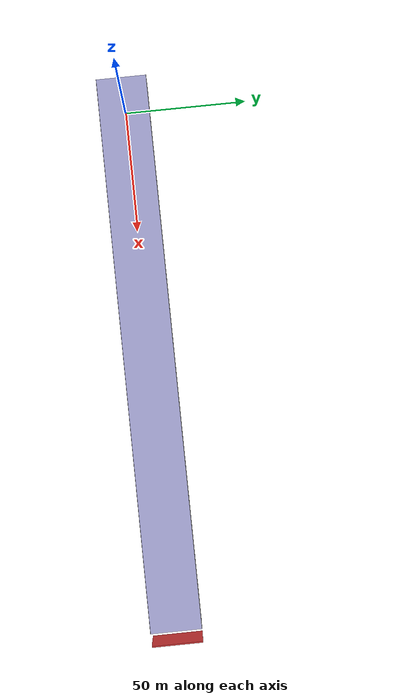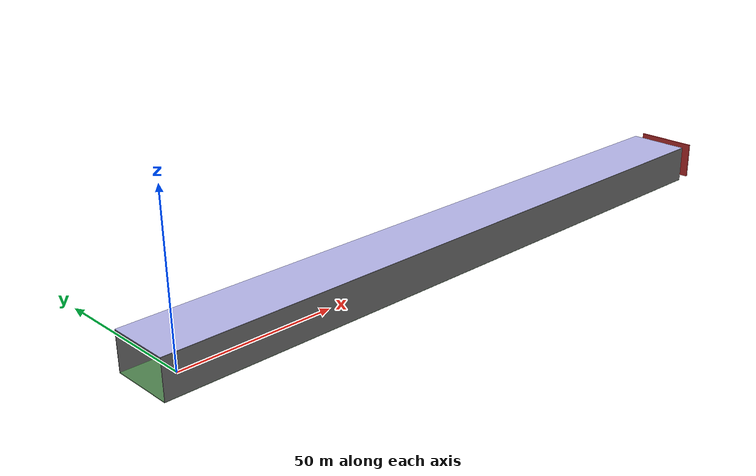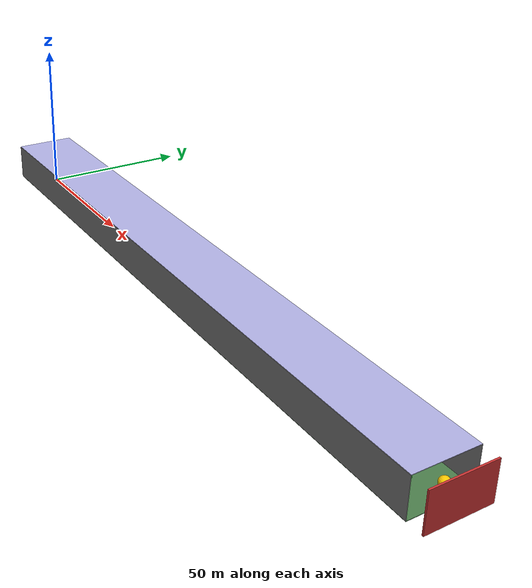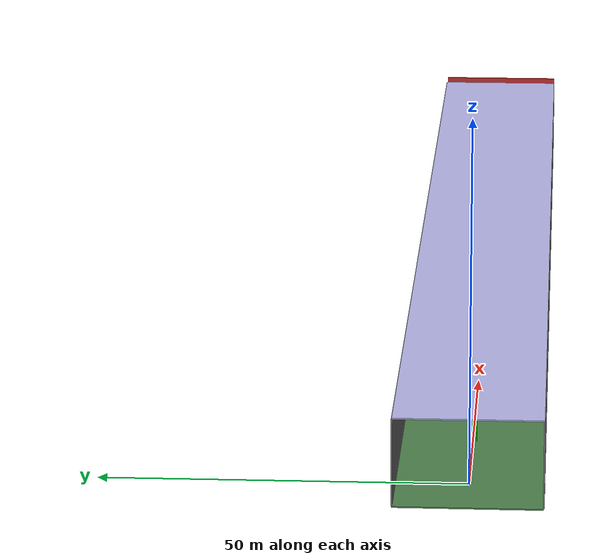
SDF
<?xml version="1.0" ?>
<sdf version="1.6">
  <world name="flappy">
    <physics name="1ms" type="ignored">
      <max_step_size>0.001</max_step_size>
      <real_time_factor>3.0</real_time_factor>
    </physics>

    <plugin filename="gz-sim-physics-system" name="gz::sim::systems::Physics"></plugin>
    <plugin filename="gz-sim-user-commands-system" name="gz::sim::systems::UserCommands"></plugin>
    <plugin filename="gz-sim-scene-broadcaster-system" name="gz::sim::systems::SceneBroadcaster"></plugin>
    <plugin filename="gz-sim-sensors-system" name="gz::sim::systems::Sensors">
      <render_engine>ogre</render_engine>
    </plugin>
    <plugin filename="gz-sim-imu-system" name="gz::sim::systems::Imu"></plugin>
    <plugin filename="gz-sim-contact-system" name="gz::sim::systems::Contact">
    </plugin>

    <light type="directional" name="sun">
      <cast_shadows>true</cast_shadows>
      <pose>0 0 30 0 0 0</pose>
      <diffuse>0.8 0.8 0.8 1</diffuse>
      <specular>0.2 0.2 0.2 1</specular>
      <attenuation>
        <range>1000</range>
        <constant>0.9</constant>
        <linear>0.01</linear>
        <quadratic>0.001</quadratic>
      </attenuation>
      <direction>-0.5 0.1 -0.9</direction>
    </light>

    <include>
      <uri>model://quadrotor</uri>
      <name>quadrotor</name>
      <pose>0 0 6 0 0 0</pose>
    </include>

    <!-- Ground Plane -->
    <model name="ground_plane">
      <static>true</static>
      <pose>100 0 -0.1 0 0 0</pose>
      <link name="link">
        <collision name="collision">
          <geometry>
            <box>
              <size>220 20 0.2</size>
            </box>
          </geometry>
        </collision>
        <visual name="visual">
          <geometry>
            <box>
              <size>220 20 0.2</size>
            </box>
          </geometry>
          <material>
            <ambient>0.3 0.5 0.3 1</ambient>
            <diffuse>0.3 0.5 0.3 1</diffuse>
          </material>
        </visual>
      </link>
    </model>

    <!-- Ceiling -->
    <model name="ceiling">
      <static>true</static>
      <pose>100 0 12 0 0 0</pose>
      <link name="link">
        <collision name="collision">
          <geometry>
            <box>
              <size>220 20 0.2</size>
            </box>
          </geometry>
        </collision>
        <visual name="visual">
          <geometry>
            <box>
              <size>220 20 0.2</size>
            </box>
          </geometry>
          <material>
            <ambient>0.7 0.7 0.9 1</ambient>
            <diffuse>0.7 0.7 0.9 1</diffuse>
          </material>
        </visual>
      </link>
    </model>

    <!-- Left Wall -->
    <model name="wall_left">
      <static>true</static>
      <pose>100 10 6 0 0 0</pose>
      <link name="link">
        <collision name="collision">
          <geometry>
            <box>
              <size>220 0.2 12</size>
            </box>
          </geometry>
        </collision>
        <visual name="visual">
          <geometry>
            <box>
              <size>220 0.2 12</size>
            </box>
          </geometry>
          <material>
            <ambient>0.5 0.5 0.5 1</ambient>
            <diffuse>0.5 0.5 0.5 1</diffuse>
          </material>
        </visual>
      </link>
    </model>

    <!-- Right Wall -->
    <model name="wall_right">
      <static>true</static>
      <pose>100 -10 6 0 0 0</pose>
      <link name="link">
        <collision name="collision">
          <geometry>
            <box>
              <size>220 0.2 12</size>
            </box>
          </geometry>
        </collision>
        <visual name="visual">
          <geometry>
            <box>
              <size>220 0.2 12</size>
            </box>
          </geometry>
          <material>
            <ambient>0.5 0.5 0.5 1</ambient>
            <diffuse>0.5 0.5 0.5 1</diffuse>
          </material>
        </visual>
      </link>
    </model>

    <!-- Flappy Bird Obstacles (Pipes) - 10 pipes total -->

    <!-- Pipe 01: Gap at height 4-7m -->
    <model name="pipe_01">
      <pose>20 0 0 0 0 0</pose>
      <static>true</static>
      <link name="link">
        <!-- Bottom pillar -->
        <collision name="col_bottom">
          <pose>0 0 2.0 0 0 0</pose>
          <geometry>
            <cylinder>
              <radius>0.5</radius>
              <length>4.0</length>
            </cylinder>
          </geometry>
        </collision>
        <visual name="vis_bottom">
          <pose>0 0 2.0 0 0 0</pose>
          <geometry>
            <cylinder>
              <radius>0.5</radius>
              <length>4.0</length>
            </cylinder>
          </geometry>
          <material>
            <ambient>0 0.8 0 1</ambient>
            <diffuse>0 0.8 0 1</diffuse>
          </material>
        </visual>
        <!-- Top pillar -->
        <collision name="col_top">
          <pose>0 0 9.5 0 0 0</pose>
          <geometry>
            <cylinder>
              <radius>0.5</radius>
              <length>5.0</length>
            </cylinder>
          </geometry>
        </collision>
        <visual name="vis_top">
          <pose>0 0 9.5 0 0 0</pose>
          <geometry>
            <cylinder>
              <radius>0.5</radius>
              <length>5.0</length>
            </cylinder>
          </geometry>
          <material>
            <ambient>0 0.8 0 1</ambient>
            <diffuse>0 0.8 0 1</diffuse>
          </material>
        </visual>
      </link>
    </model>

    <!-- Pipe 02: Gap at height 6-9m -->
    <model name="pipe_02">
      <pose>40 0 0 0 0 0</pose>
      <static>true</static>
      <link name="link">
        <collision name="col_bottom">
          <pose>0 0 3.0 0 0 0</pose>
          <geometry>
            <cylinder>
              <radius>0.5</radius>
              <length>6.0</length>
            </cylinder>
          </geometry>
        </collision>
        <visual name="vis_bottom">
          <pose>0 0 3.0 0 0 0</pose>
          <geometry>
            <cylinder>
              <radius>0.5</radius>
              <length>6.0</length>
            </cylinder>
          </geometry>
          <material>
            <ambient>0 0.8 0 1</ambient>
            <diffuse>0 0.8 0 1</diffuse>
          </material>
        </visual>
        <collision name="col_top">
          <pose>0 0 10.5 0 0 0</pose>
          <geometry>
            <cylinder>
              <radius>0.5</radius>
              <length>3.0</length>
            </cylinder>
          </geometry>
        </collision>
        <visual name="vis_top">
          <pose>0 0 10.5 0 0 0</pose>
          <geometry>
            <cylinder>
              <radius>0.5</radius>
              <length>3.0</length>
            </cylinder>
          </geometry>
          <material>
            <ambient>0 0.8 0 1</ambient>
            <diffuse>0 0.8 0 1</diffuse>
          </material>
        </visual>
      </link>
    </model>

    <!-- Pipe 03: Gap at height 3-6m -->
    <model name="pipe_03">
      <pose>60 0 0 0 0 0</pose>
      <static>true</static>
      <link name="link">
        <collision name="col_bottom">
          <pose>0 0 1.5 0 0 0</pose>
          <geometry>
            <cylinder>
              <radius>0.5</radius>
              <length>3.0</length>
            </cylinder>
          </geometry>
        </collision>
        <visual name="vis_bottom">
          <pose>0 0 1.5 0 0 0</pose>
          <geometry>
            <cylinder>
              <radius>0.5</radius>
              <length>3.0</length>
            </cylinder>
          </geometry>
          <material>
            <ambient>0 0.8 0 1</ambient>
            <diffuse>0 0.8 0 1</diffuse>
          </material>
        </visual>
        <collision name="col_top">
          <pose>0 0 9.0 0 0 0</pose>
          <geometry>
            <cylinder>
              <radius>0.5</radius>
              <length>6.0</length>
            </cylinder>
          </geometry>
        </collision>
        <visual name="vis_top">
          <pose>0 0 9.0 0 0 0</pose>
          <geometry>
            <cylinder>
              <radius>0.5</radius>
              <length>6.0</length>
            </cylinder>
          </geometry>
          <material>
            <ambient>0 0.8 0 1</ambient>
            <diffuse>0 0.8 0 1</diffuse>
          </material>
        </visual>
      </link>
    </model>

    <!-- Pipe 04: Gap at height 5-8m -->
    <model name="pipe_04">
      <pose>80 0 0 0 0 0</pose>
      <static>true</static>
      <link name="link">
        <collision name="col_bottom">
          <pose>0 0 2.5 0 0 0</pose>
          <geometry>
            <cylinder>
              <radius>0.5</radius>
              <length>5.0</length>
            </cylinder>
          </geometry>
        </collision>
        <visual name="vis_bottom">
          <pose>0 0 2.5 0 0 0</pose>
          <geometry>
            <cylinder>
              <radius>0.5</radius>
              <length>5.0</length>
            </cylinder>
          </geometry>
          <material>
            <ambient>0 0.8 0 1</ambient>
            <diffuse>0 0.8 0 1</diffuse>
          </material>
        </visual>
        <collision name="col_top">
          <pose>0 0 10.0 0 0 0</pose>
          <geometry>
            <cylinder>
              <radius>0.5</radius>
              <length>4.0</length>
            </cylinder>
          </geometry>
        </collision>
        <visual name="vis_top">
          <pose>0 0 10.0 0 0 0</pose>
          <geometry>
            <cylinder>
              <radius>0.5</radius>
              <length>4.0</length>
            </cylinder>
          </geometry>
          <material>
            <ambient>0 0.8 0 1</ambient>
            <diffuse>0 0.8 0 1</diffuse>
          </material>
        </visual>
      </link>
    </model>

    <!-- Pipe 05: Gap at height 7-10m -->
    <model name="pipe_05">
      <pose>100 0 0 0 0 0</pose>
      <static>true</static>
      <link name="link">
        <collision name="col_bottom">
          <pose>0 0 3.5 0 0 0</pose>
          <geometry>
            <cylinder>
              <radius>0.5</radius>
              <length>7.0</length>
            </cylinder>
          </geometry>
        </collision>
        <visual name="vis_bottom">
          <pose>0 0 3.5 0 0 0</pose>
          <geometry>
            <cylinder>
              <radius>0.5</radius>
              <length>7.0</length>
            </cylinder>
          </geometry>
          <material>
            <ambient>0 0.8 0 1</ambient>
            <diffuse>0 0.8 0 1</diffuse>
          </material>
        </visual>
        <collision name="col_top">
          <pose>0 0 11.0 0 0 0</pose>
          <geometry>
            <cylinder>
              <radius>0.5</radius>
              <length>2.0</length>
            </cylinder>
          </geometry>
        </collision>
        <visual name="vis_top">
          <pose>0 0 11.0 0 0 0</pose>
          <geometry>
            <cylinder>
              <radius>0.5</radius>
              <length>2.0</length>
            </cylinder>
          </geometry>
          <material>
            <ambient>0 0.8 0 1</ambient>
            <diffuse>0 0.8 0 1</diffuse>
          </material>
        </visual>
      </link>
    </model>

    <!-- Pipe 06: Gap at height 2-5m -->
    <model name="pipe_06">
      <pose>120 0 0 0 0 0</pose>
      <static>true</static>
      <link name="link">
        <collision name="col_bottom">
          <pose>0 0 1.0 0 0 0</pose>
          <geometry>
            <cylinder>
              <radius>0.5</radius>
              <length>2.0</length>
            </cylinder>
          </geometry>
        </collision>
        <visual name="vis_bottom">
          <pose>0 0 1.0 0 0 0</pose>
          <geometry>
            <cylinder>
              <radius>0.5</radius>
              <length>2.0</length>
            </cylinder>
          </geometry>
          <material>
            <ambient>0 0.8 0 1</ambient>
            <diffuse>0 0.8 0 1</diffuse>
          </material>
        </visual>
        <collision name="col_top">
          <pose>0 0 8.5 0 0 0</pose>
          <geometry>
            <cylinder>
              <radius>0.5</radius>
              <length>7.0</length>
            </cylinder>
          </geometry>
        </collision>
        <visual name="vis_top">
          <pose>0 0 8.5 0 0 0</pose>
          <geometry>
            <cylinder>
              <radius>0.5</radius>
              <length>7.0</length>
            </cylinder>
          </geometry>
          <material>
            <ambient>0 0.8 0 1</ambient>
            <diffuse>0 0.8 0 1</diffuse>
          </material>
        </visual>
      </link>
    </model>

    <!-- Pipe 07: Gap at height 5.5-8.5m -->
    <model name="pipe_07">
      <pose>140 0 0 0 0 0</pose>
      <static>true</static>
      <link name="link">
        <collision name="col_bottom">
          <pose>0 0 2.75 0 0 0</pose>
          <geometry>
            <cylinder>
              <radius>0.5</radius>
              <length>5.5</length>
            </cylinder>
          </geometry>
        </collision>
        <visual name="vis_bottom">
          <pose>0 0 2.75 0 0 0</pose>
          <geometry>
            <cylinder>
              <radius>0.5</radius>
              <length>5.5</length>
            </cylinder>
          </geometry>
          <material>
            <ambient>0 0.8 0 1</ambient>
            <diffuse>0 0.8 0 1</diffuse>
          </material>
        </visual>
        <collision name="col_top">
          <pose>0 0 10.25 0 0 0</pose>
          <geometry>
            <cylinder>
              <radius>0.5</radius>
              <length>3.5</length>
            </cylinder>
          </geometry>
        </collision>
        <visual name="vis_top">
          <pose>0 0 10.25 0 0 0</pose>
          <geometry>
            <cylinder>
              <radius>0.5</radius>
              <length>3.5</length>
            </cylinder>
          </geometry>
          <material>
            <ambient>0 0.8 0 1</ambient>
            <diffuse>0 0.8 0 1</diffuse>
          </material>
        </visual>
      </link>
    </model>

    <!-- Pipe 08: Gap at height 4-7m -->
    <model name="pipe_08">
      <pose>160 0 0 0 0 0</pose>
      <static>true</static>
      <link name="link">
        <collision name="col_bottom">
          <pose>0 0 2.0 0 0 0</pose>
          <geometry>
            <cylinder>
              <radius>0.5</radius>
              <length>4.0</length>
            </cylinder>
          </geometry>
        </collision>
        <visual name="vis_bottom">
          <pose>0 0 2.0 0 0 0</pose>
          <geometry>
            <cylinder>
              <radius>0.5</radius>
              <length>4.0</length>
            </cylinder>
          </geometry>
          <material>
            <ambient>0 0.8 0 1</ambient>
            <diffuse>0 0.8 0 1</diffuse>
          </material>
        </visual>
        <collision name="col_top">
          <pose>0 0 9.5 0 0 0</pose>
          <geometry>
            <cylinder>
              <radius>0.5</radius>
              <length>5.0</length>
            </cylinder>
          </geometry>
        </collision>
        <visual name="vis_top">
          <pose>0 0 9.5 0 0 0</pose>
          <geometry>
            <cylinder>
              <radius>0.5</radius>
              <length>5.0</length>
            </cylinder>
          </geometry>
          <material>
            <ambient>0 0.8 0 1</ambient>
            <diffuse>0 0.8 0 1</diffuse>
          </material>
        </visual>
      </link>
    </model>

    <!-- Pipe 09: Gap at height 6.5-9.5m -->
    <model name="pipe_09">
      <pose>180 0 0 0 0 0</pose>
      <static>true</static>
      <link name="link">
        <collision name="col_bottom">
          <pose>0 0 3.25 0 0 0</pose>
          <geometry>
            <cylinder>
              <radius>0.5</radius>
              <length>6.5</length>
            </cylinder>
          </geometry>
        </collision>
        <visual name="vis_bottom">
          <pose>0 0 3.25 0 0 0</pose>
          <geometry>
            <cylinder>
              <radius>0.5</radius>
              <length>6.5</length>
            </cylinder>
          </geometry>
          <material>
            <ambient>0 0.8 0 1</ambient>
            <diffuse>0 0.8 0 1</diffuse>
          </material>
        </visual>
        <collision name="col_top">
          <pose>0 0 10.75 0 0 0</pose>
          <geometry>
            <cylinder>
              <radius>0.5</radius>
              <length>2.5</length>
            </cylinder>
          </geometry>
        </collision>
        <visual name="vis_top">
          <pose>0 0 10.75 0 0 0</pose>
          <geometry>
            <cylinder>
              <radius>0.5</radius>
              <length>2.5</length>
            </cylinder>
          </geometry>
          <material>
            <ambient>0 0.8 0 1</ambient>
            <diffuse>0 0.8 0 1</diffuse>
          </material>
        </visual>
      </link>
    </model>

    <!-- Pipe 10: Gap at height 3.5-6.5m -->
    <model name="pipe_10">
      <pose>200 0 0 0 0 0</pose>
      <static>true</static>
      <link name="link">
        <collision name="col_bottom">
          <pose>0 0 1.75 0 0 0</pose>
          <geometry>
            <cylinder>
              <radius>0.5</radius>
              <length>3.5</length>
            </cylinder>
          </geometry>
        </collision>
        <visual name="vis_bottom">
          <pose>0 0 1.75 0 0 0</pose>
          <geometry>
            <cylinder>
              <radius>0.5</radius>
              <length>3.5</length>
            </cylinder>
          </geometry>
          <material>
            <ambient>0 0.8 0 1</ambient>
            <diffuse>0 0.8 0 1</diffuse>
          </material>
        </visual>
        <collision name="col_top">
          <pose>0 0 9.25 0 0 0</pose>
          <geometry>
            <cylinder>
              <radius>0.5</radius>
              <length>5.5</length>
            </cylinder>
          </geometry>
        </collision>
        <visual name="vis_top">
          <pose>0 0 9.25 0 0 0</pose>
          <geometry>
            <cylinder>
              <radius>0.5</radius>
              <length>5.5</length>
            </cylinder>
          </geometry>
          <material>
            <ambient>0 0.8 0 1</ambient>
            <diffuse>0 0.8 0 1</diffuse>
          </material>
        </visual>
      </link>
    </model>

    <!-- Goal Marker -->
    <model name="goal_marker">
      <pose>210 0 6 0 0 0</pose>
      <static>true</static>
      <link name="link">
        <visual name="visual">
          <geometry>
            <sphere>
              <radius>1.5</radius>
            </sphere>
          </geometry>
          <material>
            <ambient>1.0 0.8 0.0 1</ambient>
            <diffuse>1.0 0.8 0.0 1</diffuse>
            <emissive>0.5 0.4 0.0 1</emissive>
          </material>
        </visual>
      </link>
    </model>

    <!-- End Wall (Tunnel Cap) -->
    <model name="end_wall">
      <static>true</static>
      <pose>215 0 6 0 0 0</pose> <!-- X after last pipe -->
      <link name="link">
        <collision name="collision">
          <geometry>
            <box>
              <size>0.5 20 12</size> <!-- thin X, full Y, full Z -->
            </box>
          </geometry>
        </collision>
        <visual name="visual">
          <geometry>
            <box>
              <size>0.5 20 12</size>
            </box>
          </geometry>
          <material>
            <ambient>0.8 0.2 0.2 1</ambient>
            <diffuse>0.8 0.2 0.2 1</diffuse>
          </material>
        </visual>
      </link>
    </model>

  </world>
</sdf>

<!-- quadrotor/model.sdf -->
<sdf version="1.9">
  <model name="quadrotor">
    <pose>0 0 0.5 0 0 0</pose>

    <!-- Base Link (Drone Body) -->
    <link name="base_link">
      <pose>0 0 0 0 0 0</pose>

      <!-- Inertial Properties -->
      <inertial>
        <mass>1.0</mass>
        <inertia>
          <ixx>0.00833</ixx>
          <iyy>0.00833</iyy>
          <izz>0.015</izz>
          <ixy>0</ixy>
          <ixz>0</ixz>
          <iyz>0</iyz>
        </inertia>
      </inertial>

      <!-- Collision Geometry -->
      <collision name="base_collision">
        <geometry>
          <box>
            <size>0.3 0.3 0.1</size>
          </box>
        </geometry>
      </collision>

      <sensor name='collision_sensor' type='contact'>
        <update_rate>100.0</update_rate>
        <always_on>1</always_on>
        <contact>
          <collision>base_collision</collision>
        </contact>
        <visualize>true</visualize>
      </sensor>

      <!-- Visual Geometry - Body -->
      <visual name="base_visual">
        <geometry>
          <box>
            <size>0.3 0.3 0.1</size>
          </box>
        </geometry>
        <material>
          <ambient>0.0 0.5 1.0 1</ambient>
          <diffuse>0.0 0.5 1.0 1</diffuse>
          <specular>0.1 0.1 0.1 1</specular>
        </material>
      </visual>

      <!-- Arms (retained for visual detail) -->
      <visual name="arm_front_left">
        <pose>0.1 0.1 0 0 0 0.785398</pose>
        <geometry>
          <box>
            <size>0.15 0.02 0.01</size>
          </box>
        </geometry>
        <material>
          <ambient>0.1 0.1 0.1 1</ambient>
          <diffuse>0.2 0.2 0.2 1</diffuse>
        </material>
      </visual>

      <visual name="arm_front_right">
        <pose>-0.1 0.1 0 0 0 -0.785398</pose>
        <geometry>
          <box>
            <size>0.15 0.02 0.01</size>
          </box>
        </geometry>
        <material>
          <ambient>0.1 0.1 0.1 1</ambient>
          <diffuse>0.2 0.2 0.2 1</diffuse>
        </material>
      </visual>

      <visual name="arm_back_left">
        <pose>0.1 -0.1 0 0 0 -0.785398</pose>
        <geometry>
          <box>
            <size>0.15 0.02 0.01</size>
          </box>
        </geometry>
        <material>
          <ambient>0.1 0.1 0.1 1</ambient>
          <diffuse>0.2 0.2 0.2 1</diffuse>
        </material>
      </visual>

      <visual name="arm_back_right">
        <pose>-0.1 -0.1 0 0 0 0.785398</pose>
        <geometry>
          <box>
            <size>0.15 0.02 0.01</size>
          </box>
        </geometry>
        <material>
          <ambient>0.1 0.1 0.1 1</ambient>
          <diffuse>0.2 0.2 0.2 1</diffuse>
        </material>
      </visual>

      <!-- Motor Mounts -->
      <visual name="motor_fl">
        <pose>0.15 0.15 0.02 0 0 0</pose>
        <geometry>
          <cylinder>
            <radius>0.015</radius>
            <length>0.04</length>
          </cylinder>
        </geometry>
        <material>
          <ambient>0.3 0.3 0.3 1</ambient>
          <diffuse>0.4 0.4 0.4 1</diffuse>
        </material>
      </visual>

      <visual name="motor_fr">
        <pose>-0.15 0.15 0.02 0 0 0</pose>
        <geometry>
          <cylinder>
            <radius>0.015</radius>
            <length>0.04</length>
          </cylinder>
        </geometry>
        <material>
          <ambient>0.3 0.3 0.3 1</ambient>
          <diffuse>0.4 0.4 0.4 1</diffuse>
        </material>
      </visual>

      <visual name="motor_bl">
        <pose>0.15 -0.15 0.02 0 0 0</pose>
        <geometry>
          <cylinder>
            <radius>0.015</radius>
            <length>0.04</length>
          </cylinder>
        </geometry>
        <material>
          <ambient>0.3 0.3 0.3 1</ambient>
          <diffuse>0.4 0.4 0.4 1</diffuse>
        </material>
      </visual>

      <visual name="motor_br">
        <pose>-0.15 -0.15 0.02 0 0 0</pose>
        <geometry>
          <cylinder>
            <radius>0.015</radius>
            <length>0.04</length>
          </cylinder>
        </geometry>
        <material>
          <ambient>0.3 0.3 0.3 1</ambient>
          <diffuse>0.4 0.4 0.4 1</diffuse>
        </material>
      </visual>

      <!-- Propellers -->
      <visual name="prop_fl">
        <pose>0.15 0.15 0.055 0 0 0</pose>
        <geometry>
          <cylinder>
            <radius>0.08</radius>
            <length>0.005</length>
          </cylinder>
        </geometry>
        <material>
          <ambient>1.0 0.0 0.0 0.7</ambient>
          <diffuse>1.0 0.0 0.0 0.7</diffuse>
          <specular>0.5 0.5 0.5 0.7</specular>
        </material>
      </visual>

      <visual name="prop_fr">
        <pose>-0.15 0.15 0.055 0 0 0</pose>
        <geometry>
          <cylinder>
            <radius>0.08</radius>
            <length>0.005</length>
          </cylinder>
        </geometry>
        <material>
          <ambient>0.0 0.0 0.0 0.7</ambient>
          <diffuse>0.1 0.1 0.1 0.7</diffuse>
          <specular>0.3 0.3 0.3 0.7</specular>
        </material>
      </visual>

      <visual name="prop_bl">
        <pose>0.15 -0.15 0.055 0 0 0</pose>
        <geometry>
          <cylinder>
            <radius>0.08</radius>
            <length>0.005</length>
          </cylinder>
        </geometry>
        <material>
          <ambient>0.0 0.0 0.0 0.7</ambient>
          <diffuse>0.1 0.1 0.1 0.7</diffuse>
          <specular>0.3 0.3 0.3 0.7</specular>
        </material>
      </visual>

      <visual name="prop_br">
        <pose>-0.15 -0.15 0.055 0 0 0</pose>
        <geometry>
          <cylinder>
            <radius>0.08</radius>
            <length>0.005</length>
          </cylinder>
        </geometry>
        <material>
          <ambient>1.0 0.0 0.0 0.7</ambient>
          <diffuse>1.0 0.0 0.0 0.7</diffuse>
          <specular>0.5 0.5 0.5 0.7</specular>
        </material>
      </visual>

      <!-- Front Marker -->
      <visual name="front_marker">
        <pose>0.16 0 0 0 1.5708 0</pose>
        <geometry>
          <cylinder>
            <radius>0.01</radius>
            <length>0.03</length>
          </cylinder>
        </geometry>
        <material>
          <ambient>1.0 0.0 0.0 1</ambient>
          <diffuse>1.0 0.0 0.0 1</diffuse>
        </material>
      </visual>

      <!-- IMU Sensor -->
      <sensor name="imu_sensor" type="imu">
        <always_on>1</always_on>
        <update_rate>100</update_rate>
        <topic>/drone/imu</topic>
        <imu>
          <angular_velocity>
            <x>
              <noise type="gaussian">
                <mean>0.0</mean>
                <stddev>2e-4</stddev>
              </noise>
            </x>
            <y>
              <noise type="gaussian">
                <mean>0.0</mean>
                <stddev>2e-4</stddev>
              </noise>
            </y>
            <z>
              <noise type="gaussian">
                <mean>0.0</mean>
                <stddev>2e-4</stddev>
              </noise>
            </z>
          </angular_velocity>
          <linear_acceleration>
            <x>
              <noise type="gaussian">
                <mean>0.0</mean>
                <stddev>1.7e-2</stddev>
              </noise>
            </x>
            <y>
              <noise type="gaussian">
                <mean>0.0</mean>
                <stddev>1.7e-2</stddev>
              </noise>
            </y>
            <z>
              <noise type="gaussian">
                <mean>0.0</mean>
                <stddev>1.7e-2</stddev>
              </noise>
            </z>
          </linear_acceleration>
        </imu>
      </sensor>

      <sensor name="lidar_up" type="gpu_lidar">
        <pose>0 0 0.06 0 0 0</pose>
        <always_on>1</always_on>
        <update_rate>10</update_rate>
        <visualize>true</visualize>
        <topic>/drone/lidar/up</topic>
        <lidar>
          <scan>
            <horizontal>
              <samples>64</samples>
              <resolution>1</resolution>
              <min_angle>-1.57079</min_angle>
              <max_angle>1.57079</max_angle>
            </horizontal>
            <vertical>
              <samples>8</samples>
              <resolution>1</resolution>
              <min_angle>0.0</min_angle>
              <max_angle>0.785398</max_angle>
            </vertical>
          </scan>
          <range>
            <min>0.1</min>
            <max>15.0</max>
            <resolution>0.01</resolution>
          </range>
          <noise>
            <type>gaussian</type>
            <mean>0.0</mean>
            <stddev>0.01</stddev>
          </noise>
        </lidar>
      </sensor>

      <sensor name="lidar_down" type="gpu_lidar">
        <pose>0 0 -0.06 0 0 0</pose>
        <always_on>1</always_on>
        <update_rate>10</update_rate>
        <visualize>true</visualize>
        <topic>/drone/lidar/down</topic>
        <lidar>
          <scan>
            <horizontal>
              <samples>64</samples>
              <resolution>1</resolution>
              <min_angle>-1.57079</min_angle>
              <max_angle>1.57079</max_angle>
            </horizontal>
            <vertical>
              <samples>8</samples>
              <resolution>1</resolution>
              <min_angle>-0.785398</min_angle>
              <max_angle>0.0</max_angle>
            </vertical>
          </scan>
          <range>
            <min>0.1</min>
            <max>15.0</max>
            <resolution>0.01</resolution>
          </range>
          <noise>
            <type>gaussian</type>
            <mean>0.0</mean>
            <stddev>0.01</stddev>
          </noise>
        </lidar>
      </sensor>

      <!-- Forward Lidar -->
      <sensor name="lidar_forward" type="gpu_lidar">
        <pose>0.15 0 0 0 0 0</pose>
        <always_on>1</always_on>
        <update_rate>10</update_rate>
        <visualize>true</visualize>
        <topic>/drone/lidar/forward</topic>
        <lidar>
          <scan>
            <horizontal>
              <samples>32</samples>
              <resolution>1</resolution>
              <min_angle>-0.2</min_angle>
              <max_angle>0.2</max_angle>
            </horizontal>
            <vertical>
              <samples>8</samples>
              <resolution>1</resolution>
              <min_angle>-0.2</min_angle>
              <max_angle>0.2</max_angle>
            </vertical>
          </scan>
          <range>
            <min>0.1</min>
            <max>20.0</max>
            <resolution>0.01</resolution>
          </range>
        </lidar>
      </sensor>

    </link>

    <!-- Plugins -->
    <plugin filename="gz-sim-imu-system" name="gz::sim::systems::Imu">
    </plugin>

    <plugin filename="gz-sim-velocity-control-system" name="gz::sim::systems::VelocityControl">
      <initial_linear>0 0 0</initial_linear>
      <initial_angular>0 0 0</initial_angular>
    </plugin>

    <plugin filename="ignition-gazebo-odometry-publisher-system"
      name="ignition::gazebo::systems::OdometryPublisher">
      <odom_frame>odom</odom_frame>
      <robot_base_frame>base_link</robot_base_frame>
      <odom_publish_frequency>50</odom_publish_frequency>
      <odom_topic>/model/quadrotor/odometry</odom_topic>
    </plugin>

  </model>
</sdf>
